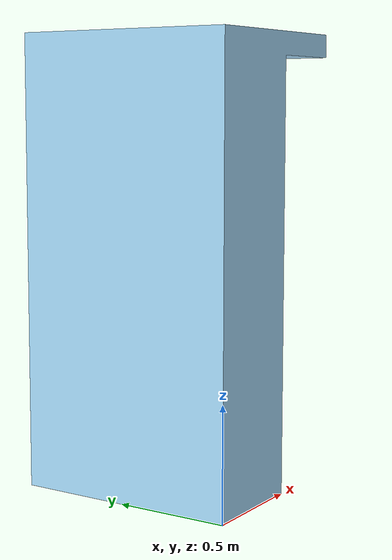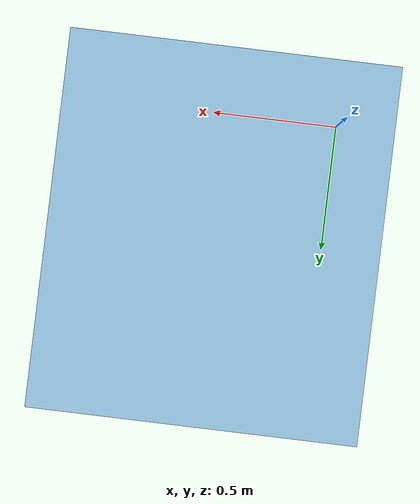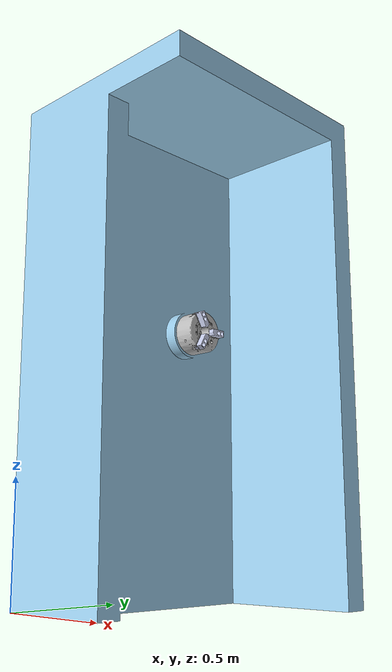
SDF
<?xml version='1.0'?>
<sdf version="1.6">
<model name="cnc">
<link name="link_cnc_machine">
<frame name="cnc_machine_frame"><pose>0 0 0 0 -0 0</pose></frame>
<visual name="cnc_machine_0_p44_visual">
<pose>0.417 0.571 1.05343 -3.14159 -1.0472 1.5708</pose>
<geometry>
<mesh><uri>/home/leo/project/final_project/src/HC10_tc/cnc_machine_gazebo/models/cnc/p44.stl</uri></mesh>
</geometry>
<material><ambient>0.792157 0.819608 0.933333 1</ambient><diffuse>0.792157 0.819608 0.933333 1</diffuse><specular>0.1 0.1 0.1 1</specular><emissive>0 0 0 0</emissive></material>
</visual>
<collision name="cnc_machine_0_p44_visual">
<pose>0.417 0.571 1.05343 -3.14159 -1.0472 1.5708</pose>
<geometry>
<mesh><uri>/home/leo/project/final_project/src/HC10_tc/cnc_machine_gazebo/models/cnc/p44.stl</uri></mesh>
</geometry>
</collision>
<visual name="cnc_machine_1_cnc_machine_visual">
<pose>-1.11022e-16 1 0 0 -0 0</pose>
<geometry>
<mesh><uri>/home/leo/project/final_project/src/HC10_tc/cnc_machine_gazebo/models/cnc/cnc_machine.stl</uri></mesh>
</geometry>
<material><ambient>0.615686 0.811765 0.929412 1</ambient><diffuse>0.615686 0.811765 0.929412 1</diffuse><specular>0.1 0.1 0.1 1</specular><emissive>0 0 0 0</emissive></material>
</visual>
<collision name="cnc_machine_1_cnc_machine_visual">
<pose>-1.11022e-16 1 0 0 -0 0</pose>
<geometry>
<mesh><uri>/home/leo/project/final_project/src/HC10_tc/cnc_machine_gazebo/models/cnc/cnc_machine.stl</uri></mesh>
</geometry>
</collision>
<visual name="cnc_machine_2_b_206_visual">
<pose>0.431 0.595 1.095 0 -0 0</pose>
<geometry>
<mesh><uri>/home/leo/project/final_project/src/HC10_tc/cnc_machine_gazebo/models/cnc/b_206.stl</uri></mesh>
</geometry>
<material><ambient>0.752941 0.752941 0.752941 1</ambient><diffuse>0.752941 0.752941 0.752941 1</diffuse><specular>0.1 0.1 0.1 1</specular><emissive>0 0 0 0</emissive></material>
</visual>
<collision name="cnc_machine_2_b_206_visual">
<pose>0.431 0.595 1.095 0 -0 0</pose>
<geometry>
<mesh><uri>/home/leo/project/final_project/src/HC10_tc/cnc_machine_gazebo/models/cnc/b_206.stl</uri></mesh>
</geometry>
</collision>
<visual name="cnc_machine_3_p44_visual">
<pose>0.417 0.571 1.13657 -3.14159 1.0472 1.5708</pose>
<geometry>
<mesh><uri>/home/leo/project/final_project/src/HC10_tc/cnc_machine_gazebo/models/cnc/p44.stl</uri></mesh>
</geometry>
<material><ambient>0.792157 0.819608 0.933333 1</ambient><diffuse>0.792157 0.819608 0.933333 1</diffuse><specular>0.1 0.1 0.1 1</specular><emissive>0 0 0 0</emissive></material>
</visual>
<collision name="cnc_machine_3_p44_visual">
<pose>0.417 0.571 1.13657 -3.14159 1.0472 1.5708</pose>
<geometry>
<mesh><uri>/home/leo/project/final_project/src/HC10_tc/cnc_machine_gazebo/models/cnc/p44.stl</uri></mesh>
</geometry>
</collision>
<visual name="cnc_machine_4_p44_visual">
<pose>0.417 0.643 1.095 -1.22465e-16 -0 -1.5708</pose>
<geometry>
<mesh><uri>/home/leo/project/final_project/src/HC10_tc/cnc_machine_gazebo/models/cnc/p44.stl</uri></mesh>
</geometry>
<material><ambient>0.792157 0.819608 0.933333 1</ambient><diffuse>0.792157 0.819608 0.933333 1</diffuse><specular>0.1 0.1 0.1 1</specular><emissive>0 0 0 0</emissive></material>
</visual>
<collision name="cnc_machine_4_p44_visual">
<pose>0.417 0.643 1.095 -1.22465e-16 -0 -1.5708</pose>
<geometry>
<mesh><uri>/home/leo/project/final_project/src/HC10_tc/cnc_machine_gazebo/models/cnc/p44.stl</uri></mesh>
</geometry>
</collision>
<visual name="cnc_machine_5_p31_visual">
<pose>0.4305 0.58545 1.11154 3.14159 1.0472 1.5708</pose>
<geometry>
<mesh><uri>/home/leo/project/final_project/src/HC10_tc/cnc_machine_gazebo/models/cnc/p31.stl</uri></mesh>
</geometry>
<material><ambient>0.792157 0.819608 0.933333 1</ambient><diffuse>0.792157 0.819608 0.933333 1</diffuse><specular>0.1 0.1 0.1 1</specular><emissive>0 0 0 0</emissive></material>
</visual>
<collision name="cnc_machine_5_p31_visual">
<pose>0.4305 0.58545 1.11154 3.14159 1.0472 1.5708</pose>
<geometry>
<mesh><uri>/home/leo/project/final_project/src/HC10_tc/cnc_machine_gazebo/models/cnc/p31.stl</uri></mesh>
</geometry>
</collision>
<visual name="cnc_machine_6_p31_visual">
<pose>0.4305 0.6141 1.095 -1.22465e-16 -0 -1.5708</pose>
<geometry>
<mesh><uri>/home/leo/project/final_project/src/HC10_tc/cnc_machine_gazebo/models/cnc/p31.stl</uri></mesh>
</geometry>
<material><ambient>0.792157 0.819608 0.933333 1</ambient><diffuse>0.792157 0.819608 0.933333 1</diffuse><specular>0.1 0.1 0.1 1</specular><emissive>0 0 0 0</emissive></material>
</visual>
<collision name="cnc_machine_6_p31_visual">
<pose>0.4305 0.6141 1.095 -1.22465e-16 -0 -1.5708</pose>
<geometry>
<mesh><uri>/home/leo/project/final_project/src/HC10_tc/cnc_machine_gazebo/models/cnc/p31.stl</uri></mesh>
</geometry>
</collision>
<visual name="cnc_machine_7_p31_visual">
<pose>0.4299 0.58575 1.07898 -3.14159 -1.0472 1.5708</pose>
<geometry>
<mesh><uri>/home/leo/project/final_project/src/HC10_tc/cnc_machine_gazebo/models/cnc/p31.stl</uri></mesh>
</geometry>
<material><ambient>0.792157 0.819608 0.933333 1</ambient><diffuse>0.792157 0.819608 0.933333 1</diffuse><specular>0.1 0.1 0.1 1</specular><emissive>0 0 0 0</emissive></material>
</visual>
<collision name="cnc_machine_7_p31_visual">
<pose>0.4299 0.58575 1.07898 -3.14159 -1.0472 1.5708</pose>
<geometry>
<mesh><uri>/home/leo/project/final_project/src/HC10_tc/cnc_machine_gazebo/models/cnc/p31.stl</uri></mesh>
</geometry>
</collision>
<inertial>
<pose frame="cnc_machine_frame">0.253377 0.540239 1.05899 0 0 0</pose>
<mass>2269.65</mass>
<inertia><ixx>1056.54</ixx><ixy>-39.1702</ixy><ixz>-45.4104</ixz><iyy>921.253</iyy><iyz>9.72877</iyz><izz>332.227</izz></inertia>
</inertial>
</link>

</model>
</sdf>
